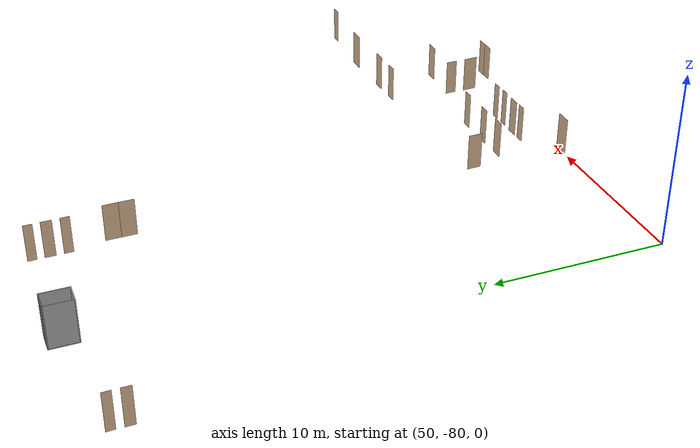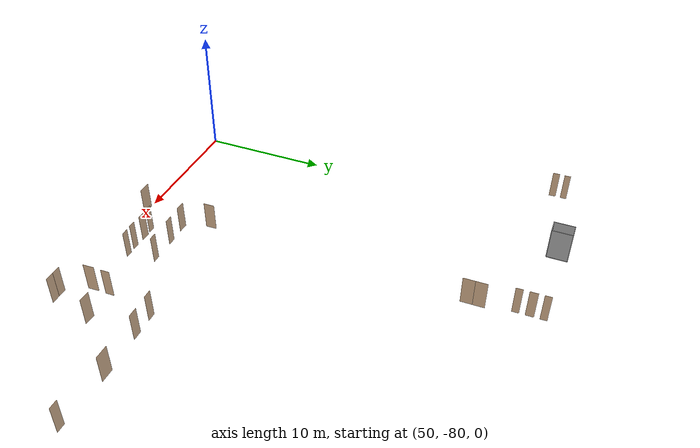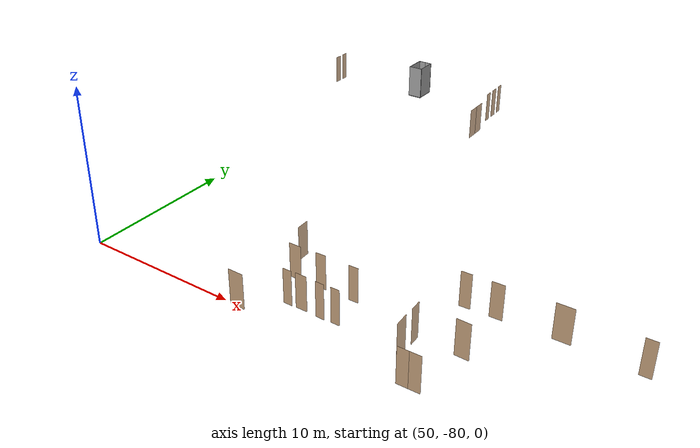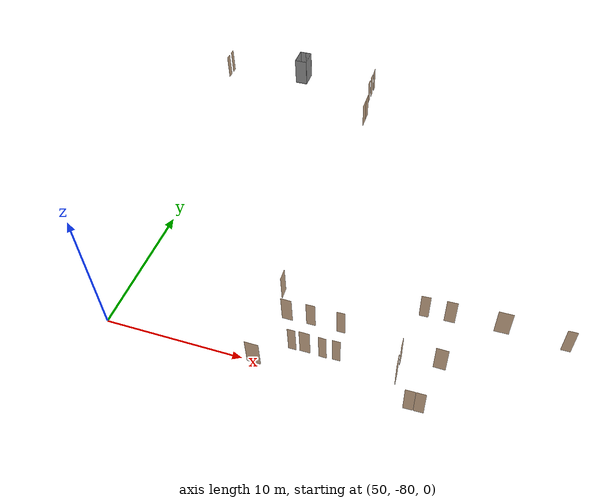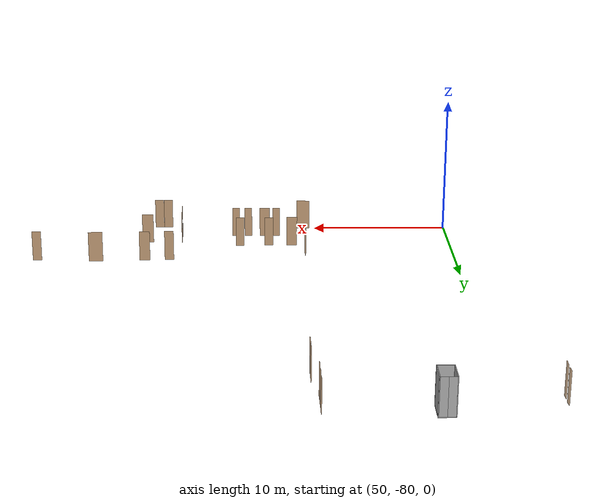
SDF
<sdf version="1.7">
 <world name="sim_world">
  <model name="door39">
   <pose>46.52322018796359 -49.56767782032454 0.0 0 0 1.614453339529361</pose>
   <link name="right">
    <pose>0 0 1.11 0 0 0</pose>
    <visual name="right_visual">
     <geometry><box><size>0.4695753791276946 0.03 2.2</size></box></geometry>
     <material>
      <ambient>0.5 0.25 0 0.6</ambient>
      <diffuse>0.5 0.25 0 0.6</diffuse>
      <pbr><metal><metalness>0.0</metalness></metal></pbr>
     </material>
    </visual>
    <collision name="right_collision">
     <geometry><box><size>0.4695753791276946 0.03 2.2</size></box></geometry>
     <surface><contact><collide_bitmask>0x02</collide_bitmask></contact></surface>
    </collision>
    <inertial>
     <mass>50.0</mass>
     <inertia><ixx>20.17041666666667</ixx><iyy>21.085420986178832</iyy><izz>0.9225043195121589</izz></inertia>
    </inertial>
   </link>
   <joint name="right_joint" type="revolute">
    <parent>world</parent>
    <child>right</child>
    <axis><xyz>0 0 -1</xyz><limit><lower>0</lower><upper>1.57</upper></limit></axis>
    <pose>0.2397876895638473 0 0 0 0 0</pose>
   </joint>
   <plugin name="register_component" filename="libregister_component.so">
    <component name="Door">
     <v_max_door>0.5</v_max_door>
     <a_max_door>0.3</a_max_door>
     <a_nom_door>0.15</a_nom_door>
     <dx_min_door>0.01</dx_min_door>
     <f_max_door>500.0</f_max_door>
     <ros_interface>true</ros_interface>
     <door name="door39" type="SwingDoor" left_joint_name="empty_joint" right_joint_name="right_joint"/>
    </component>
   </plugin>
  </model>
  <model name="door40">
   <pose>46.51955216671978 -50.44770348853293 0.0 0 0 1.565711337570367</pose>
   <link name="right">
    <pose>0 0 1.11 0 0 0</pose>
    <visual name="right_visual">
     <geometry><box><size>0.5199685496257583 0.03 2.2</size></box></geometry>
     <material>
      <ambient>0.5 0.25 0 0.6</ambient>
      <diffuse>0.5 0.25 0 0.6</diffuse>
      <pbr><metal><metalness>0.0</metalness></metal></pbr>
     </material>
    </visual>
    <collision name="right_collision">
     <geometry><box><size>0.5199685496257583 0.03 2.2</size></box></geometry>
     <surface><contact><collide_bitmask>0x02</collide_bitmask></contact></surface>
    </collision>
    <inertial>
     <mass>50.0</mass>
     <inertia><ixx>20.17041666666667</ixx><iyy>21.293197052499647</iyy><izz>1.1302803858329782</izz></inertia>
    </inertial>
   </link>
   <joint name="right_joint" type="revolute">
    <parent>world</parent>
    <child>right</child>
    <axis><xyz>0 0 -1</xyz><limit><lower>0</lower><upper>1.57</upper></limit></axis>
    <pose>0.2649842748128792 0 0 0 0 0</pose>
   </joint>
   <plugin name="register_component" filename="libregister_component.so">
    <component name="Door">
     <v_max_door>0.5</v_max_door>
     <a_max_door>0.3</a_max_door>
     <a_nom_door>0.15</a_nom_door>
     <dx_min_door>0.01</dx_min_door>
     <f_max_door>500.0</f_max_door>
     <ros_interface>true</ros_interface>
     <door name="door40" type="SwingDoor" left_joint_name="empty_joint" right_joint_name="right_joint"/>
    </component>
   </plugin>
  </model>
  <model name="door46">
   <pose>60.80610565195609 -48.59143022340612 0.0 0 0 1.596445273976212</pose>
   <link name="right">
    <pose>0 0 1.11 0 0 0</pose>
    <visual name="right_visual">
     <geometry><box><size>0.5002174013635796 0.03 2.2</size></box></geometry>
     <material>
      <ambient>0.5 0.25 0 0.6</ambient>
      <diffuse>0.5 0.25 0 0.6</diffuse>
      <pbr><metal><metalness>0.0</metalness></metal></pbr>
     </material>
    </visual>
    <collision name="right_collision">
     <geometry><box><size>0.5002174013635796 0.03 2.2</size></box></geometry>
     <surface><contact><collide_bitmask>0x02</collide_bitmask></contact></surface>
    </collision>
    <inertial>
     <mass>50.0</mass>
     <inertia><ixx>20.17041666666667</ixx><iyy>21.20923936927889</iyy><izz>1.046322702612219</izz></inertia>
    </inertial>
   </link>
   <joint name="right_joint" type="revolute">
    <parent>world</parent>
    <child>right</child>
    <axis><xyz>0 0 1</xyz><limit><lower>0</lower><upper>1.57</upper></limit></axis>
    <pose>0.2551087006817898 0 0 0 0 0</pose>
   </joint>
   <plugin name="register_component" filename="libregister_component.so">
    <component name="Door">
     <v_max_door>0.5</v_max_door>
     <a_max_door>0.3</a_max_door>
     <a_nom_door>0.15</a_nom_door>
     <dx_min_door>0.01</dx_min_door>
     <f_max_door>500.0</f_max_door>
     <ros_interface>true</ros_interface>
     <door name="door46" type="SwingDoor" left_joint_name="empty_joint" right_joint_name="right_joint"/>
    </component>
   </plugin>
  </model>
  <model name="door45">
   <pose>60.81713965871807 -49.54171721282754 0.0 0 0 1.5856034779132662</pose>
   <link name="right">
    <pose>0 0 1.11 0 0 0</pose>
    <visual name="right_visual">
     <geometry><box><size>0.5966823630114231 0.03 2.2</size></box></geometry>
     <material>
      <ambient>0.5 0.25 0 0.6</ambient>
      <diffuse>0.5 0.25 0 0.6</diffuse>
      <pbr><metal><metalness>0.0</metalness></metal></pbr>
     </material>
    </visual>
    <collision name="right_collision">
     <geometry><box><size>0.5966823630114231 0.03 2.2</size></box></geometry>
     <surface><contact><collide_bitmask>0x02</collide_bitmask></contact></surface>
    </collision>
    <inertial>
     <mass>50.0</mass>
     <inertia><ixx>20.17041666666667</ixx><iyy>21.65012434303707</iyy><izz>1.4872076763703987</izz></inertia>
    </inertial>
   </link>
   <joint name="right_joint" type="revolute">
    <parent>world</parent>
    <child>right</child>
    <axis><xyz>0 0 1</xyz><limit><lower>0</lower><upper>1.57</upper></limit></axis>
    <pose>0.30334118150571154 0 0 0 0 0</pose>
   </joint>
   <plugin name="register_component" filename="libregister_component.so">
    <component name="Door">
     <v_max_door>0.5</v_max_door>
     <a_max_door>0.3</a_max_door>
     <a_nom_door>0.15</a_nom_door>
     <dx_min_door>0.01</dx_min_door>
     <f_max_door>500.0</f_max_door>
     <ros_interface>true</ros_interface>
     <door name="door45" type="SwingDoor" left_joint_name="empty_joint" right_joint_name="right_joint"/>
    </component>
   </plugin>
  </model>
  <model name="door44">
   <pose>60.82848806730095 -50.516767088523494 0.0 0 0 1.5971151132183918</pose>
   <link name="right">
    <pose>0 0 1.11 0 0 0</pose>
    <visual name="right_visual">
     <geometry><box><size>0.5111293228381271 0.03 2.2</size></box></geometry>
     <material>
      <ambient>0.5 0.25 0 0.6</ambient>
      <diffuse>0.5 0.25 0 0.6</diffuse>
      <pbr><metal><metalness>0.0</metalness></metal></pbr>
     </material>
    </visual>
    <collision name="right_collision">
     <geometry><box><size>0.5111293228381271 0.03 2.2</size></box></geometry>
     <surface><contact><collide_bitmask>0x02</collide_bitmask></contact></surface>
    </collision>
    <inertial>
     <mass>50.0</mass>
     <inertia><ixx>20.17041666666667</ixx><iyy>21.255221602770682</iyy><izz>1.0923049361040098</izz></inertia>
    </inertial>
   </link>
   <joint name="right_joint" type="revolute">
    <parent>world</parent>
    <child>right</child>
    <axis><xyz>0 0 1</xyz><limit><lower>0</lower><upper>1.57</upper></limit></axis>
    <pose>0.26056466141906354 0 0 0 0 0</pose>
   </joint>
   <plugin name="register_component" filename="libregister_component.so">
    <component name="Door">
     <v_max_door>0.5</v_max_door>
     <a_max_door>0.3</a_max_door>
     <a_nom_door>0.15</a_nom_door>
     <dx_min_door>0.01</dx_min_door>
     <f_max_door>500.0</f_max_door>
     <ros_interface>true</ros_interface>
     <door name="door44" type="SwingDoor" left_joint_name="empty_joint" right_joint_name="right_joint"/>
    </component>
   </plugin>
  </model>
  <model name="door_13333">
   <pose>62.97118139126572 -78.36025223329914 0.0 0 0 3.1353742283296864</pose>
   <link name="right">
    <pose>0 0 1.11 0 0 0</pose>
    <visual name="right_visual">
     <geometry><box><size>0.5485680916456347 0.03 2.2</size></box></geometry>
     <material>
      <ambient>0.5 0.25 0 0.6</ambient>
      <diffuse>0.5 0.25 0 0.6</diffuse>
      <pbr><metal><metalness>0.0</metalness></metal></pbr>
     </material>
    </visual>
    <collision name="right_collision">
     <geometry><box><size>0.5485680916456347 0.03 2.2</size></box></geometry>
     <surface><contact><collide_bitmask>0x02</collide_bitmask></contact></surface>
    </collision>
    <inertial>
     <mass>50.0</mass>
     <inertia><ixx>20.17041666666667</ixx><iyy>21.420528963215563</iyy><izz>1.2576122965488896</izz></inertia>
    </inertial>
   </link>
   <joint name="right_joint" type="revolute">
    <parent>world</parent>
    <child>right</child>
    <axis><xyz>0 0 1</xyz><limit><lower>0</lower><upper>1.57</upper></limit></axis>
    <pose>0.27928404582281735 0 0 0 0 0</pose>
   </joint>
   <plugin name="register_component" filename="libregister_component.so">
    <component name="Door">
     <v_max_door>0.5</v_max_door>
     <a_max_door>0.3</a_max_door>
     <a_nom_door>0.15</a_nom_door>
     <dx_min_door>0.01</dx_min_door>
     <f_max_door>500.0</f_max_door>
     <ros_interface>true</ros_interface>
     <door name="door_13333" type="SwingDoor" left_joint_name="empty_joint" right_joint_name="right_joint"/>
    </component>
   </plugin>
  </model>
  <model name="door_2">
   <pose>63.853871989194104 -78.32262881539836 0.0 0 0 3.1298165068661516</pose>
   <link name="right">
    <pose>0 0 1.11 0 0 0</pose>
    <visual name="right_visual">
     <geometry><box><size>0.7248529232268011 0.03 2.2</size></box></geometry>
     <material>
      <ambient>0.5 0.25 0 0.6</ambient>
      <diffuse>0.5 0.25 0 0.6</diffuse>
      <pbr><metal><metalness>0.0</metalness></metal></pbr>
     </material>
    </visual>
    <collision name="right_collision">
     <geometry><box><size>0.7248529232268011 0.03 2.2</size></box></geometry>
     <surface><contact><collide_bitmask>0x02</collide_bitmask></contact></surface>
    </collision>
    <inertial>
     <mass>50.0</mass>
     <inertia><ixx>20.17041666666667</ixx><iyy>22.355882334626834</iyy><izz>2.192965667960162</izz></inertia>
    </inertial>
   </link>
   <joint name="right_joint" type="revolute">
    <parent>world</parent>
    <child>right</child>
    <axis><xyz>0 0 -1</xyz><limit><lower>0</lower><upper>1.57</upper></limit></axis>
    <pose>0.36742646161340053 0 0 0 0 0</pose>
   </joint>
   <plugin name="register_component" filename="libregister_component.so">
    <component name="Door">
     <v_max_door>0.5</v_max_door>
     <a_max_door>0.3</a_max_door>
     <a_nom_door>0.15</a_nom_door>
     <dx_min_door>0.01</dx_min_door>
     <f_max_door>500.0</f_max_door>
     <ros_interface>true</ros_interface>
     <door name="door_2" type="SwingDoor" left_joint_name="empty_joint" right_joint_name="right_joint"/>
    </component>
   </plugin>
  </model>
  <model name="door_3">
   <pose>65.09209116049685 -78.36162961270497 0.0 0 0 3.108331789125926</pose>
   <link name="right">
    <pose>0 0 1.11 0 0 0</pose>
    <visual name="right_visual">
     <geometry><box><size>0.5374517884175859 0.03 2.2</size></box></geometry>
     <material>
      <ambient>0.5 0.25 0 0.6</ambient>
      <diffuse>0.5 0.25 0 0.6</diffuse>
      <pbr><metal><metalness>0.0</metalness></metal></pbr>
     </material>
    </visual>
    <collision name="right_collision">
     <geometry><box><size>0.5374517884175859 0.03 2.2</size></box></geometry>
     <surface><contact><collide_bitmask>0x02</collide_bitmask></contact></surface>
    </collision>
    <inertial>
     <mass>50.0</mass>
     <inertia><ixx>20.17041666666667</ixx><iyy>21.370226770305262</iyy><izz>1.2073101036385898</izz></inertia>
    </inertial>
   </link>
   <joint name="right_joint" type="revolute">
    <parent>world</parent>
    <child>right</child>
    <axis><xyz>0 0 1</xyz><limit><lower>0</lower><upper>1.57</upper></limit></axis>
    <pose>0.27372589420879295 0 0 0 0 0</pose>
   </joint>
   <plugin name="register_component" filename="libregister_component.so">
    <component name="Door">
     <v_max_door>0.5</v_max_door>
     <a_max_door>0.3</a_max_door>
     <a_nom_door>0.15</a_nom_door>
     <dx_min_door>0.01</dx_min_door>
     <f_max_door>500.0</f_max_door>
     <ros_interface>true</ros_interface>
     <door name="door_3" type="SwingDoor" left_joint_name="empty_joint" right_joint_name="right_joint"/>
    </component>
   </plugin>
  </model>
  <model name="door_4">
   <pose>66.02894870071134 -78.31300213107278 0.0 0 0 3.141592653589793</pose>
   <link name="right">
    <pose>0 0 1.11 0 0 0</pose>
    <visual name="right_visual">
     <geometry><box><size>0.5369094532094658 0.03 2.2</size></box></geometry>
     <material>
      <ambient>0.5 0.25 0 0.6</ambient>
      <diffuse>0.5 0.25 0 0.6</diffuse>
      <pbr><metal><metalness>0.0</metalness></metal></pbr>
     </material>
    </visual>
    <collision name="right_collision">
     <geometry><box><size>0.5369094532094658 0.03 2.2</size></box></geometry>
     <surface><contact><collide_bitmask>0x02</collide_bitmask></contact></surface>
    </collision>
    <inertial>
     <mass>50.0</mass>
     <inertia><ixx>20.17041666666667</ixx><iyy>21.36779900394037</iyy><izz>1.2048823372736983</izz></inertia>
    </inertial>
   </link>
   <joint name="right_joint" type="revolute">
    <parent>world</parent>
    <child>right</child>
    <axis><xyz>0 0 -1</xyz><limit><lower>0</lower><upper>1.57</upper></limit></axis>
    <pose>0.2734547266047329 0 0 0 0 0</pose>
   </joint>
   <plugin name="register_component" filename="libregister_component.so">
    <component name="Door">
     <v_max_door>0.5</v_max_door>
     <a_max_door>0.3</a_max_door>
     <a_nom_door>0.15</a_nom_door>
     <dx_min_door>0.01</dx_min_door>
     <f_max_door>500.0</f_max_door>
     <ros_interface>true</ros_interface>
     <door name="door_4" type="SwingDoor" left_joint_name="empty_joint" right_joint_name="right_joint"/>
    </component>
   </plugin>
  </model>
  <model name="door_5">
   <pose>60.8884190429702 -80.05547690854984 0.0 0 0 3.13056040372824</pose>
   <link name="right">
    <pose>0 0 1.11 0 0 0</pose>
    <visual name="right_visual">
     <geometry><box><size>0.961680529976433 0.03 2.2</size></box></geometry>
     <material>
      <ambient>0.5 0.25 0 0.6</ambient>
      <diffuse>0.5 0.25 0 0.6</diffuse>
      <pbr><metal><metalness>0.0</metalness></metal></pbr>
     </material>
    </visual>
    <collision name="right_collision">
     <geometry><box><size>0.961680529976433 0.03 2.2</size></box></geometry>
     <surface><contact><collide_bitmask>0x02</collide_bitmask></contact></surface>
    </collision>
    <inertial>
     <mass>50.0</mass>
     <inertia><ixx>20.17041666666667</ixx><iyy>24.020122673898975</iyy><izz>3.857206007232305</izz></inertia>
    </inertial>
   </link>
   <joint name="right_joint" type="revolute">
    <parent>world</parent>
    <child>right</child>
    <axis><xyz>0 0 -1</xyz><limit><lower>0</lower><upper>1.57</upper></limit></axis>
    <pose>0.48584026498821653 0 0 0 0 0</pose>
   </joint>
   <plugin name="register_component" filename="libregister_component.so">
    <component name="Door">
     <v_max_door>0.5</v_max_door>
     <a_max_door>0.3</a_max_door>
     <a_nom_door>0.15</a_nom_door>
     <dx_min_door>0.01</dx_min_door>
     <f_max_door>500.0</f_max_door>
     <ros_interface>true</ros_interface>
     <door name="door_5" type="SwingDoor" left_joint_name="empty_joint" right_joint_name="right_joint"/>
    </component>
   </plugin>
  </model>
  <model name="door_6">
   <pose>63.55469619933687 -76.16511369130555 0.0 0 0 -3.125162963471955</pose>
   <link name="right">
    <pose>0 0 1.11 0 0 0</pose>
    <visual name="right_visual">
     <geometry><box><size>0.6406600409057893 0.03 2.2</size></box></geometry>
     <material>
      <ambient>0.5 0.25 0 0.6</ambient>
      <diffuse>0.5 0.25 0 0.6</diffuse>
      <pbr><metal><metalness>0.0</metalness></metal></pbr>
     </material>
    </visual>
    <collision name="right_collision">
     <geometry><box><size>0.6406600409057893 0.03 2.2</size></box></geometry>
     <surface><contact><collide_bitmask>0x02</collide_bitmask></contact></surface>
    </collision>
    <inertial>
     <mass>50.0</mass>
     <inertia><ixx>20.17041666666667</ixx><iyy>21.876855366722538</iyy><izz>1.7139387000558652</izz></inertia>
    </inertial>
   </link>
   <joint name="right_joint" type="revolute">
    <parent>world</parent>
    <child>right</child>
    <axis><xyz>0 0 1</xyz><limit><lower>0</lower><upper>1.57</upper></limit></axis>
    <pose>0.32533002045289466 0 0 0 0 0</pose>
   </joint>
   <plugin name="register_component" filename="libregister_component.so">
    <component name="Door">
     <v_max_door>0.5</v_max_door>
     <a_max_door>0.3</a_max_door>
     <a_nom_door>0.15</a_nom_door>
     <dx_min_door>0.01</dx_min_door>
     <f_max_door>500.0</f_max_door>
     <ros_interface>true</ros_interface>
     <door name="door_6" type="SwingDoor" left_joint_name="empty_joint" right_joint_name="right_joint"/>
    </component>
   </plugin>
  </model>
  <model name="door_7">
   <pose>65.68589139956595 -76.1521783021029 0.0 0 0 -3.116650722735391</pose>
   <link name="right">
    <pose>0 0 1.11 0 0 0</pose>
    <visual name="right_visual">
     <geometry><box><size>0.5987215430998428 0.03 2.2</size></box></geometry>
     <material>
      <ambient>0.5 0.25 0 0.6</ambient>
      <diffuse>0.5 0.25 0 0.6</diffuse>
      <pbr><metal><metalness>0.0</metalness></metal></pbr>
     </material>
    </visual>
    <collision name="right_collision">
     <geometry><box><size>0.5987215430998428 0.03 2.2</size></box></geometry>
     <surface><contact><collide_bitmask>0x02</collide_bitmask></contact></surface>
    </collision>
    <inertial>
     <mass>50.0</mass>
     <inertia><ixx>20.17041666666667</ixx><iyy>21.66028119238274</iyy><izz>1.4973645257160708</izz></inertia>
    </inertial>
   </link>
   <joint name="right_joint" type="revolute">
    <parent>world</parent>
    <child>right</child>
    <axis><xyz>0 0 1</xyz><limit><lower>0</lower><upper>1.57</upper></limit></axis>
    <pose>0.3043607715499214 0 0 0 0 0</pose>
   </joint>
   <plugin name="register_component" filename="libregister_component.so">
    <component name="Door">
     <v_max_door>0.5</v_max_door>
     <a_max_door>0.3</a_max_door>
     <a_nom_door>0.15</a_nom_door>
     <dx_min_door>0.01</dx_min_door>
     <f_max_door>500.0</f_max_door>
     <ros_interface>true</ros_interface>
     <door name="door_7" type="SwingDoor" left_joint_name="empty_joint" right_joint_name="right_joint"/>
    </component>
   </plugin>
  </model>
  <model name="door_8">
   <pose>61.84324240152172 -76.22056818390583 0.0 0 0 3.126676399824572</pose>
   <link name="right">
    <pose>0 0 1.11 0 0 0</pose>
    <visual name="right_visual">
     <geometry><box><size>0.7709112806285519 0.03 2.2</size></box></geometry>
     <material>
      <ambient>0.5 0.25 0 0.6</ambient>
      <diffuse>0.5 0.25 0 0.6</diffuse>
      <pbr><metal><metalness>0.0</metalness></metal></pbr>
     </material>
    </visual>
    <collision name="right_collision">
     <geometry><box><size>0.7709112806285519 0.03 2.2</size></box></geometry>
     <surface><contact><collide_bitmask>0x02</collide_bitmask></contact></surface>
    </collision>
    <inertial>
     <mass>50.0</mass>
     <inertia><ixx>20.17041666666667</ixx><iyy>22.642934177501477</iyy><izz>2.480017510834808</izz></inertia>
    </inertial>
   </link>
   <joint name="right_joint" type="revolute">
    <parent>world</parent>
    <child>right</child>
    <axis><xyz>0 0 1</xyz><limit><lower>0</lower><upper>1.57</upper></limit></axis>
    <pose>0.39045564031427593 0 0 0 0 0</pose>
   </joint>
   <plugin name="register_component" filename="libregister_component.so">
    <component name="Door">
     <v_max_door>0.5</v_max_door>
     <a_max_door>0.3</a_max_door>
     <a_nom_door>0.15</a_nom_door>
     <dx_min_door>0.01</dx_min_door>
     <f_max_door>500.0</f_max_door>
     <ros_interface>true</ros_interface>
     <door name="door_8" type="SwingDoor" left_joint_name="empty_joint" right_joint_name="right_joint"/>
    </component>
   </plugin>
  </model>
  <model name="door_9">
   <pose>70.08259126360858 -77.14378667369947 0.0 0 0 1.6064891185814518</pose>
   <link name="right">
    <pose>0 0 1.11 0 0 0</pose>
    <visual name="right_visual">
     <geometry><box><size>0.6663048379635179 0.03 2.2</size></box></geometry>
     <material>
      <ambient>0.5 0.25 0 0.6</ambient>
      <diffuse>0.5 0.25 0 0.6</diffuse>
      <pbr><metal><metalness>0.0</metalness></metal></pbr>
     </material>
    </visual>
    <collision name="right_collision">
     <geometry><box><size>0.6663048379635179 0.03 2.2</size></box></geometry>
     <surface><contact><collide_bitmask>0x02</collide_bitmask></contact></surface>
    </collision>
    <inertial>
     <mass>50.0</mass>
     <inertia><ixx>20.17041666666667</ixx><iyy>22.01650890455663</iyy><izz>1.853592237889958</izz></inertia>
    </inertial>
   </link>
   <joint name="right_joint" type="revolute">
    <parent>world</parent>
    <child>right</child>
    <axis><xyz>0 0 -1</xyz><limit><lower>0</lower><upper>1.57</upper></limit></axis>
    <pose>0.33815241898175896 0 0 0 0 0</pose>
   </joint>
   <plugin name="register_component" filename="libregister_component.so">
    <component name="Door">
     <v_max_door>0.5</v_max_door>
     <a_max_door>0.3</a_max_door>
     <a_nom_door>0.15</a_nom_door>
     <dx_min_door>0.01</dx_min_door>
     <f_max_door>500.0</f_max_door>
     <ros_interface>true</ros_interface>
     <door name="door_9" type="SwingDoor" left_joint_name="empty_joint" right_joint_name="right_joint"/>
    </component>
   </plugin>
  </model>
  <model name="door_1">
   <pose>70.10536293835075 -78.49266031444297 0.0 0 0 1.6235086548815885</pose>
   <link name="right">
    <pose>0 0 1.11 0 0 0</pose>
    <visual name="right_visual">
     <geometry><box><size>0.8543983110395748 0.03 2.2</size></box></geometry>
     <material>
      <ambient>0.5 0.25 0 0.6</ambient>
      <diffuse>0.5 0.25 0 0.6</diffuse>
      <pbr><metal><metalness>0.0</metalness></metal></pbr>
     </material>
    </visual>
    <collision name="right_collision">
     <geometry><box><size>0.8543983110395748 0.03 2.2</size></box></geometry>
     <surface><contact><collide_bitmask>0x02</collide_bitmask></contact></surface>
    </collision>
    <inertial>
     <mass>50.0</mass>
     <inertia><ixx>20.17041666666667</ixx><iyy>23.20831864128033</iyy><izz>3.0454019746136582</izz></inertia>
    </inertial>
   </link>
   <joint name="right_joint" type="revolute">
    <parent>world</parent>
    <child>right</child>
    <axis><xyz>0 0 -1</xyz><limit><lower>0</lower><upper>1.57</upper></limit></axis>
    <pose>0.4321991555197874 0 0 0 0 0</pose>
   </joint>
   <plugin name="register_component" filename="libregister_component.so">
    <component name="Door">
     <v_max_door>0.5</v_max_door>
     <a_max_door>0.3</a_max_door>
     <a_nom_door>0.15</a_nom_door>
     <dx_min_door>0.01</dx_min_door>
     <f_max_door>500.0</f_max_door>
     <ros_interface>true</ros_interface>
     <door name="door_1" type="SwingDoor" left_joint_name="empty_joint" right_joint_name="right_joint"/>
    </component>
   </plugin>
  </model>
  <model name="door_11">
   <pose>71.61881844657665 -80.31228331016227 0.0 0 0 -3.1220053555144225</pose>
   <link name="right">
    <pose>0.33365930768121327 0 1.11 0 0 0</pose>
    <visual name="right_visual">
     <geometry><box><size>0.6573186153624265 0.03 2.2</size></box></geometry>
     <material>
      <ambient>0.5 0.25 0 0.6</ambient>
      <diffuse>0.5 0.25 0 0.6</diffuse>
      <pbr><metal><metalness>0.0</metalness></metal></pbr>
     </material>
    </visual>
    <collision name="right_collision">
     <geometry><box><size>0.6573186153624265 0.03 2.2</size></box></geometry>
     <surface><contact><collide_bitmask>0x02</collide_bitmask></contact></surface>
    </collision>
    <inertial>
     <mass>50.0</mass>
     <inertia><ixx>20.17041666666667</ixx><iyy>21.966949008758245</iyy><izz>1.8040323420915736</izz></inertia>
    </inertial>
   </link>
   <joint name="right_joint" type="revolute">
    <parent>world</parent>
    <child>right</child>
    <axis><xyz>0 0 -1</xyz><limit><lower>0</lower><upper>1.57</upper></limit></axis>
    <pose>0.33365930768121327 0 0 0 0 0</pose>
   </joint>
   <link name="left">
    <pose>-0.33365930768121327 0 1.11 0 0 0</pose>
    <visual name="left_visual">
     <geometry><box><size>0.6573186153624265 0.03 2.2</size></box></geometry>
     <material>
      <ambient>0.5 0.25 0 0.6</ambient>
      <diffuse>0.5 0.25 0 0.6</diffuse>
      <pbr><metal><metalness>0.0</metalness></metal></pbr>
     </material>
    </visual>
    <collision name="left_collision">
     <geometry><box><size>0.6573186153624265 0.03 2.2</size></box></geometry>
     <surface><contact><collide_bitmask>0x02</collide_bitmask></contact></surface>
    </collision>
    <inertial>
     <mass>50.0</mass>
     <inertia><ixx>20.17041666666667</ixx><iyy>21.966949008758245</iyy><izz>1.8040323420915736</izz></inertia>
    </inertial>
   </link>
   <joint name="left_joint" type="revolute">
    <parent>world</parent>
    <child>left</child>
    <axis><xyz>0 0 -1</xyz><limit><lower>-1.57</lower><upper>0</upper></limit></axis>
    <pose>-0.33365930768121327 0 0 0 0 0</pose>
   </joint>
   <plugin name="register_component" filename="libregister_component.so">
    <component name="Door">
     <v_max_door>0.5</v_max_door>
     <a_max_door>0.3</a_max_door>
     <a_nom_door>0.15</a_nom_door>
     <dx_min_door>0.01</dx_min_door>
     <f_max_door>500.0</f_max_door>
     <ros_interface>true</ros_interface>
     <door name="door_11" type="DoubleSwingDoor" left_joint_name="left_joint" right_joint_name="right_joint"/>
    </component>
   </plugin>
  </model>
  <model name="door_12">
   <pose>72.63123722441361 -76.94092264164394 0.0 0 0 3.115746471532353</pose>
   <link name="right">
    <pose>0 0 1.11 0 0 0</pose>
    <visual name="right_visual">
     <geometry><box><size>0.8311710733303261 0.03 2.2</size></box></geometry>
     <material>
      <ambient>0.5 0.25 0 0.6</ambient>
      <diffuse>0.5 0.25 0 0.6</diffuse>
      <pbr><metal><metalness>0.0</metalness></metal></pbr>
     </material>
    </visual>
    <collision name="right_collision">
     <geometry><box><size>0.8311710733303261 0.03 2.2</size></box></geometry>
     <surface><contact><collide_bitmask>0x02</collide_bitmask></contact></surface>
    </collision>
    <inertial>
     <mass>50.0</mass>
     <inertia><ixx>20.17041666666667</ixx><iyy>23.045188971421197</iyy><izz>2.882272304754527</izz></inertia>
    </inertial>
   </link>
   <joint name="right_joint" type="revolute">
    <parent>world</parent>
    <child>right</child>
    <axis><xyz>0 0 1</xyz><limit><lower>0</lower><upper>1.57</upper></limit></axis>
    <pose>0.4205855366651631 0 0 0 0 0</pose>
   </joint>
   <plugin name="register_component" filename="libregister_component.so">
    <component name="Door">
     <v_max_door>0.5</v_max_door>
     <a_max_door>0.3</a_max_door>
     <a_nom_door>0.15</a_nom_door>
     <dx_min_door>0.01</dx_min_door>
     <f_max_door>500.0</f_max_door>
     <ros_interface>true</ros_interface>
     <door name="door_12" type="SwingDoor" left_joint_name="empty_joint" right_joint_name="right_joint"/>
    </component>
   </plugin>
  </model>
  <model name="door_13">
   <pose>72.61310671940849 -73.14970079858946 0.0 0 0 -3.113000919333766</pose>
   <link name="right">
    <pose>0 0 1.11 0 0 0</pose>
    <visual name="right_visual">
     <geometry><box><size>0.7514630588536508 0.03 2.2</size></box></geometry>
     <material>
      <ambient>0.5 0.25 0 0.6</ambient>
      <diffuse>0.5 0.25 0 0.6</diffuse>
      <pbr><metal><metalness>0.0</metalness></metal></pbr>
     </material>
    </visual>
    <collision name="right_collision">
     <geometry><box><size>0.7514630588536508 0.03 2.2</size></box></geometry>
     <surface><contact><collide_bitmask>0x02</collide_bitmask></contact></surface>
    </collision>
    <inertial>
     <mass>50.0</mass>
     <inertia><ixx>20.17041666666667</ixx><iyy>22.519569703423695</iyy><izz>2.3566530367570233</izz></inertia>
    </inertial>
   </link>
   <joint name="right_joint" type="revolute">
    <parent>world</parent>
    <child>right</child>
    <axis><xyz>0 0 -1</xyz><limit><lower>0</lower><upper>1.57</upper></limit></axis>
    <pose>0.3807315294268254 0 0 0 0 0</pose>
   </joint>
   <plugin name="register_component" filename="libregister_component.so">
    <component name="Door">
     <v_max_door>0.5</v_max_door>
     <a_max_door>0.3</a_max_door>
     <a_nom_door>0.15</a_nom_door>
     <dx_min_door>0.01</dx_min_door>
     <f_max_door>500.0</f_max_door>
     <ros_interface>true</ros_interface>
     <door name="door_13" type="SwingDoor" left_joint_name="empty_joint" right_joint_name="right_joint"/>
    </component>
   </plugin>
  </model>
  <model name="door_14">
   <pose>70.83214017614435 -73.22039629374564 0.0 0 0 -3.104595769294893</pose>
   <link name="right">
    <pose>0 0 1.11 0 0 0</pose>
    <visual name="right_visual">
     <geometry><box><size>0.6578572273407539 0.03 2.2</size></box></geometry>
     <material>
      <ambient>0.5 0.25 0 0.6</ambient>
      <diffuse>0.5 0.25 0 0.6</diffuse>
      <pbr><metal><metalness>0.0</metalness></metal></pbr>
     </material>
    </visual>
    <collision name="right_collision">
     <geometry><box><size>0.6578572273407539 0.03 2.2</size></box></geometry>
     <surface><contact><collide_bitmask>0x02</collide_bitmask></contact></surface>
    </collision>
    <inertial>
     <mass>50.0</mass>
     <inertia><ixx>20.17041666666667</ixx><iyy>21.969900548185276</iyy><izz>1.8069838815186017</izz></inertia>
    </inertial>
   </link>
   <joint name="right_joint" type="revolute">
    <parent>world</parent>
    <child>right</child>
    <axis><xyz>0 0 1</xyz><limit><lower>0</lower><upper>1.57</upper></limit></axis>
    <pose>0.33392861367037696 0 0 0 0 0</pose>
   </joint>
   <plugin name="register_component" filename="libregister_component.so">
    <component name="Door">
     <v_max_door>0.5</v_max_door>
     <a_max_door>0.3</a_max_door>
     <a_nom_door>0.15</a_nom_door>
     <dx_min_door>0.01</dx_min_door>
     <f_max_door>500.0</f_max_door>
     <ros_interface>true</ros_interface>
     <door name="door_14" type="SwingDoor" left_joint_name="empty_joint" right_joint_name="right_joint"/>
    </component>
   </plugin>
  </model>
  <model name="door_15">
   <pose>60.87922653258776 -74.25757795785711 0.0 0 0 1.6052497603680724</pose>
   <link name="right">
    <pose>0 0 1.11 0 0 0</pose>
    <visual name="right_visual">
     <geometry><box><size>0.8462200604633958 0.03 2.2</size></box></geometry>
     <material>
      <ambient>0.5 0.25 0 0.6</ambient>
      <diffuse>0.5 0.25 0 0.6</diffuse>
      <pbr><metal><metalness>0.0</metalness></metal></pbr>
     </material>
    </visual>
    <collision name="right_collision">
     <geometry><box><size>0.8462200604633958 0.03 2.2</size></box></geometry>
     <surface><contact><collide_bitmask>0x02</collide_bitmask></contact></surface>
    </collision>
    <inertial>
     <mass>50.0</mass>
     <inertia><ixx>20.17041666666667</ixx><iyy>23.150368294711146</iyy><izz>2.9874516280444725</izz></inertia>
    </inertial>
   </link>
   <joint name="right_joint" type="revolute">
    <parent>world</parent>
    <child>right</child>
    <axis><xyz>0 0 -1</xyz><limit><lower>0</lower><upper>1.57</upper></limit></axis>
    <pose>0.4281100302316979 0 0 0 0 0</pose>
   </joint>
   <plugin name="register_component" filename="libregister_component.so">
    <component name="Door">
     <v_max_door>0.5</v_max_door>
     <a_max_door>0.3</a_max_door>
     <a_nom_door>0.15</a_nom_door>
     <dx_min_door>0.01</dx_min_door>
     <f_max_door>500.0</f_max_door>
     <ros_interface>true</ros_interface>
     <door name="door_15" type="SwingDoor" left_joint_name="empty_joint" right_joint_name="right_joint"/>
    </component>
   </plugin>
  </model>
  <model name="door_18">
   <pose>80.44196657552499 -73.17428402668061 0.0 0 0 -3.1380720243608606</pose>
   <link name="right">
    <pose>0 0 1.11 0 0 0</pose>
    <visual name="right_visual">
     <geometry><box><size>0.644888080024031 0.03 2.2</size></box></geometry>
     <material>
      <ambient>0.5 0.25 0 0.6</ambient>
      <diffuse>0.5 0.25 0 0.6</diffuse>
      <pbr><metal><metalness>0.0</metalness></metal></pbr>
     </material>
    </visual>
    <collision name="right_collision">
     <geometry><box><size>0.644888080024031 0.03 2.2</size></box></geometry>
     <surface><contact><collide_bitmask>0x02</collide_bitmask></contact></surface>
    </collision>
    <inertial>
     <mass>50.0</mass>
     <inertia><ixx>20.17041666666667</ixx><iyy>21.899502648987845</iyy><izz>1.736585982321171</izz></inertia>
    </inertial>
   </link>
   <joint name="right_joint" type="revolute">
    <parent>world</parent>
    <child>right</child>
    <axis><xyz>0 0 -1</xyz><limit><lower>0</lower><upper>1.57</upper></limit></axis>
    <pose>0.3274440400120155 0 0 0 0 0</pose>
   </joint>
   <plugin name="register_component" filename="libregister_component.so">
    <component name="Door">
     <v_max_door>0.5</v_max_door>
     <a_max_door>0.3</a_max_door>
     <a_nom_door>0.15</a_nom_door>
     <dx_min_door>0.01</dx_min_door>
     <f_max_door>500.0</f_max_door>
     <ros_interface>true</ros_interface>
     <door name="door_18" type="SwingDoor" left_joint_name="empty_joint" right_joint_name="right_joint"/>
    </component>
   </plugin>
  </model>
  <model name="door_20">
   <pose>76.15963411671277 -72.98772397476594 0.0 0 0 -3.1343525383689768</pose>
   <link name="right">
    <pose>0 0 1.11 0 0 0</pose>
    <visual name="right_visual">
     <geometry><box><size>1.0156655080302948 0.03 2.2</size></box></geometry>
     <material>
      <ambient>0.5 0.25 0 0.6</ambient>
      <diffuse>0.5 0.25 0 0.6</diffuse>
      <pbr><metal><metalness>0.0</metalness></metal></pbr>
     </material>
    </visual>
    <collision name="right_collision">
     <geometry><box><size>1.0156655080302948 0.03 2.2</size></box></geometry>
     <surface><contact><collide_bitmask>0x02</collide_bitmask></contact></surface>
    </collision>
    <inertial>
     <mass>50.0</mass>
     <inertia><ixx>20.17041666666667</ixx><iyy>24.46490176751016</iyy><izz>4.301985100843487</izz></inertia>
    </inertial>
   </link>
   <joint name="right_joint" type="revolute">
    <parent>world</parent>
    <child>right</child>
    <axis><xyz>0 0 -1</xyz><limit><lower>0</lower><upper>1.57</upper></limit></axis>
    <pose>0.5128327540151474 0 0 0 0 0</pose>
   </joint>
   <plugin name="register_component" filename="libregister_component.so">
    <component name="Door">
     <v_max_door>0.5</v_max_door>
     <a_max_door>0.3</a_max_door>
     <a_nom_door>0.15</a_nom_door>
     <dx_min_door>0.01</dx_min_door>
     <f_max_door>500.0</f_max_door>
     <ros_interface>true</ros_interface>
     <door name="door_20" type="SwingDoor" left_joint_name="empty_joint" right_joint_name="right_joint"/>
    </component>
   </plugin>
  </model>
  <model name="door_61">
   <pose>61.24519025211286 -53.415551877201764 0.0 0 0 1.5827661950847614</pose>
   <link name="right">
    <pose>0.4396550707248036 0 1.11 0 0 0</pose>
    <visual name="right_visual">
     <geometry><box><size>0.8693101414496072 0.03 2.2</size></box></geometry>
     <material>
      <ambient>0.5 0.25 0 0.6</ambient>
      <diffuse>0.5 0.25 0 0.6</diffuse>
      <pbr><metal><metalness>0.0</metalness></metal></pbr>
     </material>
    </visual>
    <collision name="right_collision">
     <geometry><box><size>0.8693101414496072 0.03 2.2</size></box></geometry>
     <surface><contact><collide_bitmask>0x02</collide_bitmask></contact></surface>
    </collision>
    <inertial>
     <mass>50.0</mass>
     <inertia><ixx>20.17041666666667</ixx><iyy>23.315417175113073</iyy><izz>3.1525005084464004</izz></inertia>
    </inertial>
   </link>
   <joint name="right_joint" type="revolute">
    <parent>world</parent>
    <child>right</child>
    <axis><xyz>0 0 -1</xyz><limit><lower>0</lower><upper>1.57</upper></limit></axis>
    <pose>0.4396550707248036 0 0 0 0 0</pose>
   </joint>
   <link name="left">
    <pose>-0.4396550707248036 0 1.11 0 0 0</pose>
    <visual name="left_visual">
     <geometry><box><size>0.8693101414496072 0.03 2.2</size></box></geometry>
     <material>
      <ambient>0.5 0.25 0 0.6</ambient>
      <diffuse>0.5 0.25 0 0.6</diffuse>
      <pbr><metal><metalness>0.0</metalness></metal></pbr>
     </material>
    </visual>
    <collision name="left_collision">
     <geometry><box><size>0.8693101414496072 0.03 2.2</size></box></geometry>
     <surface><contact><collide_bitmask>0x02</collide_bitmask></contact></surface>
    </collision>
    <inertial>
     <mass>50.0</mass>
     <inertia><ixx>20.17041666666667</ixx><iyy>23.315417175113073</iyy><izz>3.1525005084464004</izz></inertia>
    </inertial>
   </link>
   <joint name="left_joint" type="revolute">
    <parent>world</parent>
    <child>left</child>
    <axis><xyz>0 0 -1</xyz><limit><lower>-1.57</lower><upper>0</upper></limit></axis>
    <pose>-0.4396550707248036 0 0 0 0 0</pose>
   </joint>
   <plugin name="register_component" filename="libregister_component.so">
    <component name="Door">
     <v_max_door>0.5</v_max_door>
     <a_max_door>0.3</a_max_door>
     <a_nom_door>0.15</a_nom_door>
     <dx_min_door>0.01</dx_min_door>
     <f_max_door>500.0</f_max_door>
     <ros_interface>true</ros_interface>
     <door name="door_61" type="DoubleSwingDoor" left_joint_name="left_joint" right_joint_name="right_joint"/>
    </component>
   </plugin>
  </model>
  <model name="lift">
   <link name="platform">
    <inertial>
     <mass>1200</mass>
     <inertia><ixx>121.25000000000001</ixx><iyy>256.25000000000006</iyy><izz>377.00000000000006</izz></inertia>
    </inertial>
    <visual name="floor_visual">
     <pose>0 0 -0.025 0 0 0</pose>
     <geometry><box><size>1.1 1.6 0.05</size></box></geometry>
     <material>
      <ambient>0.5 0.5 0.5 1</ambient>
      <diffuse>0.7 0.7 0.7 1</diffuse>
      <specular>0.6 0.6 0.6 1</specular>
      <emissive>0.1 0.1 0.1 1</emissive>
     </material>
    </visual>
    <collision name="floor_collision">
     <pose>0 0 -0.025 0 0 0</pose>
     <geometry><box><size>1.1 1.6 0.05</size></box></geometry>
     <surface><contact><collide_bitmask>0x01</collide_bitmask></contact></surface>
    </collision>
    <visual name="frontwall1_visual">
     <pose>-0.525 0.775 1.25 0 0 0</pose>
     <geometry><box><size>0.050000000000000044 0.05 2.5</size></box></geometry>
     <material>
      <ambient>0.5 0.5 0.5 1</ambient>
      <diffuse>0.7 0.7 0.7 1</diffuse>
      <specular>0.6 0.6 0.6 1</specular>
      <emissive>0.1 0.1 0.1 1</emissive>
     </material>
    </visual>
    <collision name="frontwall1_collision">
     <pose>-0.525 0.775 1.25 0 0 0</pose>
     <geometry><box><size>0.050000000000000044 0.05 2.5</size></box></geometry>
     <surface><contact><collide_bitmask>0x01</collide_bitmask></contact></surface>
    </collision>
    <visual name="frontwall2_visual">
     <pose>0.525 0.775 1.25 0 0 0</pose>
     <geometry><box><size>0.050000000000000044 0.05 2.5</size></box></geometry>
     <material>
      <ambient>0.5 0.5 0.5 1</ambient>
      <diffuse>0.7 0.7 0.7 1</diffuse>
      <specular>0.6 0.6 0.6 1</specular>
      <emissive>0.1 0.1 0.1 1</emissive>
     </material>
    </visual>
    <collision name="frontwall2_collision">
     <pose>0.525 0.775 1.25 0 0 0</pose>
     <geometry><box><size>0.050000000000000044 0.05 2.5</size></box></geometry>
     <surface><contact><collide_bitmask>0x01</collide_bitmask></contact></surface>
    </collision>
    <visual name="backwall1_visual">
     <pose>0.0 -0.775 1.25 0 0 0</pose>
     <geometry><box><size>1.1 0.05 2.5</size></box></geometry>
     <material>
      <ambient>0.5 0.5 0.5 1</ambient>
      <diffuse>0.7 0.7 0.7 1</diffuse>
      <specular>0.6 0.6 0.6 1</specular>
      <emissive>0.1 0.1 0.1 1</emissive>
     </material>
    </visual>
    <collision name="backwall1_collision">
     <pose>0.0 -0.775 1.25 0 0 0</pose>
     <geometry><box><size>1.1 0.05 2.5</size></box></geometry>
     <surface><contact><collide_bitmask>0x01</collide_bitmask></contact></surface>
    </collision>
    <visual name="leftwall1_visual">
     <pose>-0.525 0.0 1.25 0 0 1.5707963267948966</pose>
     <geometry><box><size>1.5 0.05 2.5</size></box></geometry>
     <material>
      <ambient>0.5 0.5 0.5 1</ambient>
      <diffuse>0.7 0.7 0.7 1</diffuse>
      <specular>0.6 0.6 0.6 1</specular>
      <emissive>0.1 0.1 0.1 1</emissive>
     </material>
    </visual>
    <collision name="leftwall1_collision">
     <pose>-0.525 0.0 1.25 0 0 1.5707963267948966</pose>
     <geometry><box><size>1.5 0.05 2.5</size></box></geometry>
     <surface><contact><collide_bitmask>0x01</collide_bitmask></contact></surface>
    </collision>
    <visual name="rightwall1_visual">
     <pose>0.525 0.0 1.25 0 0 1.5707963267948966</pose>
     <geometry><box><size>1.5 0.05 2.5</size></box></geometry>
     <material>
      <ambient>0.5 0.5 0.5 1</ambient>
      <diffuse>0.7 0.7 0.7 1</diffuse>
      <specular>0.6 0.6 0.6 1</specular>
      <emissive>0.1 0.1 0.1 1</emissive>
     </material>
    </visual>
    <collision name="rightwall1_collision">
     <pose>0.525 0.0 1.25 0 0 1.5707963267948966</pose>
     <geometry><box><size>1.5 0.05 2.5</size></box></geometry>
     <surface><contact><collide_bitmask>0x01</collide_bitmask></contact></surface>
    </collision>
   </link>
   <joint name="cabin_joint" type="prismatic">
    <parent>world</parent>
    <child>platform</child>
    <axis><xyz>0 0 1</xyz></axis>
   </joint>
   <model name="CabinDoor_lift_door_lift">
    <pose>0.0 0.775 0 0 0 0.0</pose>
    <link name="right_door">
     <pose>0.25 0 1.25 0 0 0</pose>
     <visual name="right_door_visual">
      <geometry><box><size>0.5 0.03 2.5</size></box></geometry>
      <material>
       <ambient>0.5 0.5 0.5 1</ambient>
       <diffuse>0.7 0.7 0.7 1</diffuse>
       <specular>0.6 0.6 0.6 1</specular>
       <emissive>0.1 0.1 0.1 1</emissive>
      </material>
     </visual>
     <collision name="right_door_collision">
      <geometry><box><size>0.5 0.03 2.5</size></box></geometry>
      <surface><contact><collide_bitmask>0x02</collide_bitmask></contact></surface>
     </collision>
    </link>
    <link name="left_door">
     <pose>-0.25 0 1.25 0 0 0</pose>
     <visual name="left_door_visual">
      <geometry><box><size>0.5 0.03 2.5</size></box></geometry>
      <material>
       <ambient>0.5 0.5 0.5 1</ambient>
       <diffuse>0.7 0.7 0.7 1</diffuse>
       <specular>0.6 0.6 0.6 1</specular>
       <emissive>0.1 0.1 0.1 1</emissive>
      </material>
     </visual>
     <collision name="left_door_collision">
      <geometry><box><size>0.5 0.03 2.5</size></box></geometry>
      <surface><contact><collide_bitmask>0x02</collide_bitmask></contact></surface>
     </collision>
    </link>
    <plugin name="register_component" filename="libregister_component.so">
     <component name="Door">
      <v_max_door>0.3</v_max_door>
      <a_max_door>0.2</a_max_door>
      <a_nom_door>0.1</a_nom_door>
      <dx_min_door>0.0001</dx_min_door>
      <f_max_door>35.0</f_max_door>
      <door left_joint_name="CabinDoor_lift_door_lift_left_joint" name="CabinDoor_lift_door_lift" right_joint_name="CabinDoor_lift_door_lift_right_joint" type="DoubleSlidingDoor"/>
     </component>
    </plugin>
   </model>
   <joint name="CabinDoor_lift_door_lift_right_joint" type="prismatic">
    <parent>platform</parent>
    <child>CabinDoor_lift_door_lift::right_door</child>
    <axis><xyz>1 0 0</xyz><limit><lower>0</lower><upper>0.5</upper></limit></axis>
   </joint>
   <joint name="CabinDoor_lift_door_lift_left_joint" type="prismatic">
    <parent>platform</parent>
    <child>CabinDoor_lift_door_lift::left_door</child>
    <axis><xyz>1 0 0</xyz><limit><lower>-0.5</lower><upper>0</upper></limit></axis>
   </joint>
   <plugin name="register_component" filename="libregister_component.so">
    <component name="Lift">
     <lift_name>lift</lift_name>
     <floor name="TD_n0" elevation="0.0">
      <door_pair cabin_door="CabinDoor_lift_door_lift" shaft_door="ShaftDoor_lift_TD_n0_door_lift"/>
     </floor>
     <floor name="TD_n1" elevation="10.0">
      <door_pair cabin_door="CabinDoor_lift_door_lift" shaft_door="ShaftDoor_lift_TD_n1_door_lift"/>
     </floor>
     <initial_floor>TD_n0</initial_floor>
     <v_max_cabin>2.0</v_max_cabin>
     <a_max_cabin>1.2</a_max_cabin>
     <a_nom_cabin>1.0</a_nom_cabin>
     <dx_min_cabin>0.001</dx_min_cabin>
     <f_max_cabin>25323.0</f_max_cabin>
     <cabin_joint_name>cabin_joint</cabin_joint_name>
    </component>
   </plugin>
   <pose>53.687853797129875 -48.80713981557261 0 0 0 0.0</pose>
  </model>
 </world>
</sdf>
